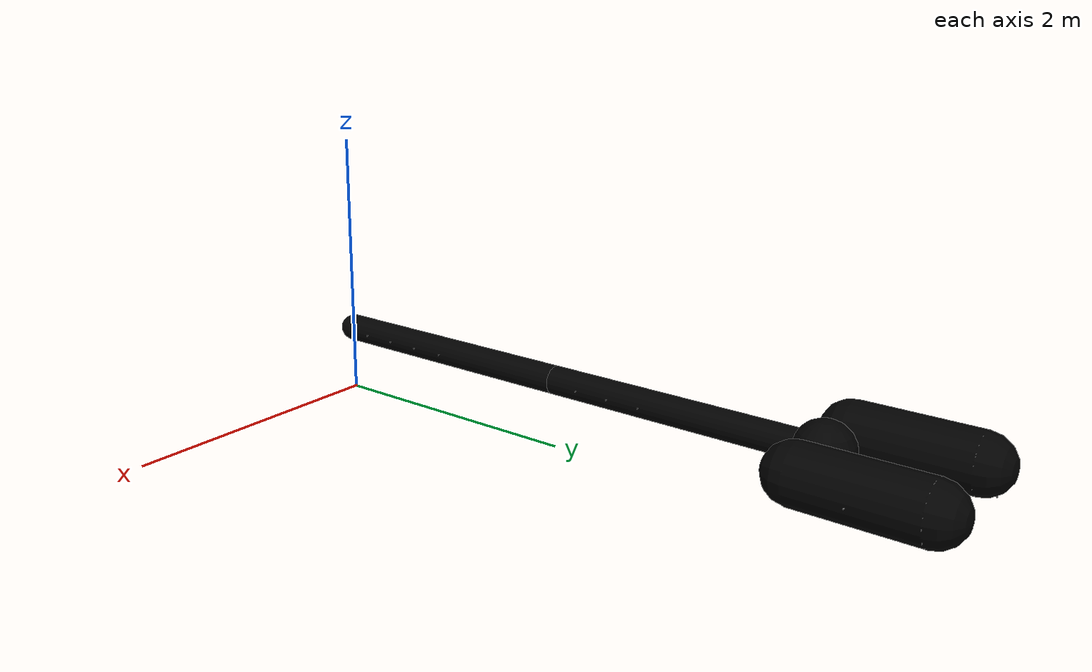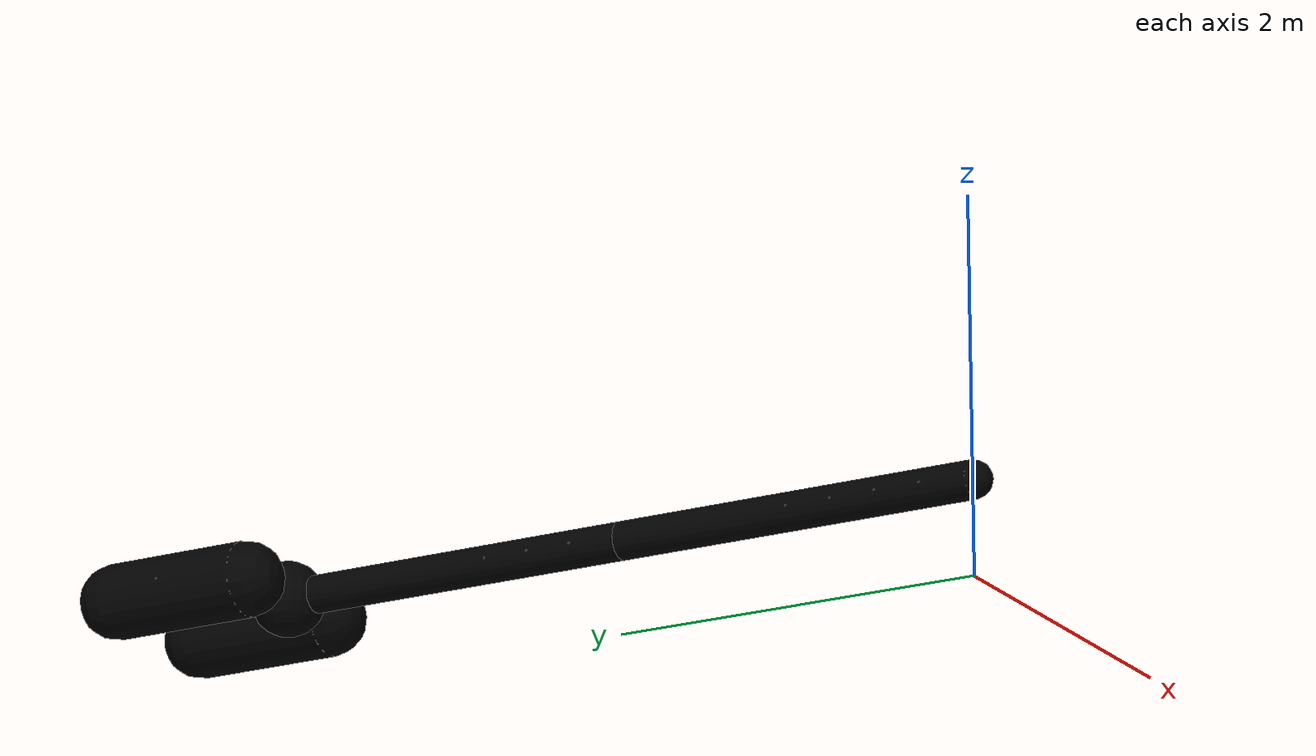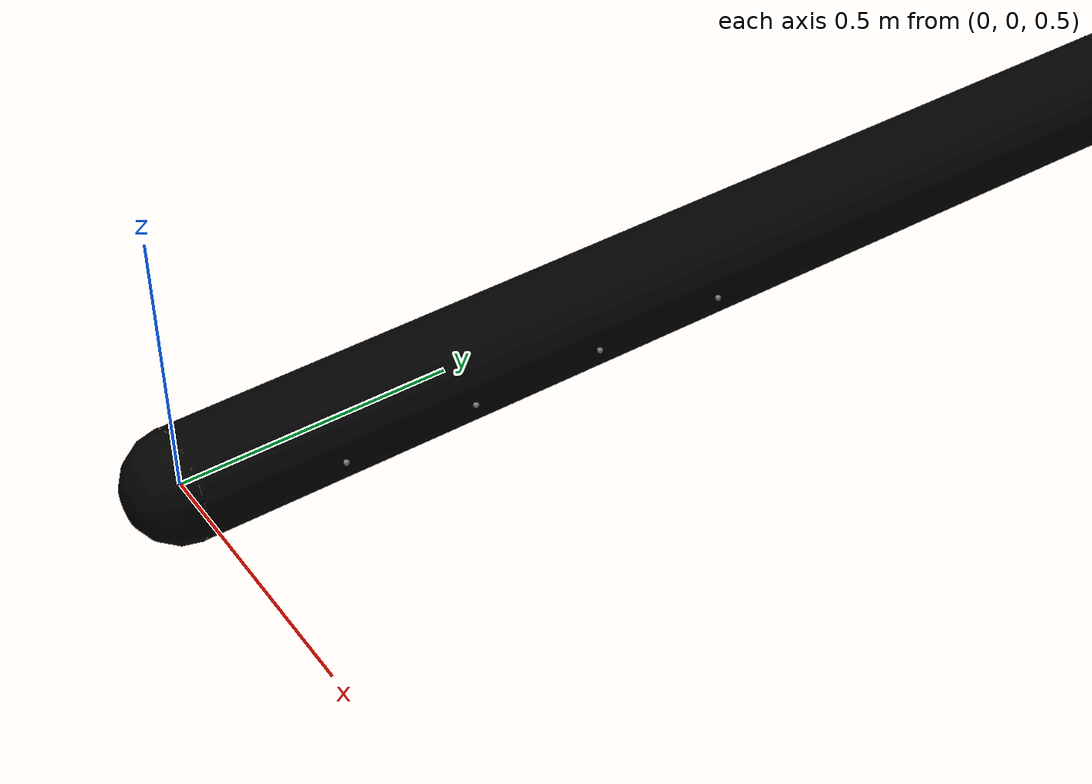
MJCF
<mujoco model="pr2_model">
    <worldbody name="base">
        <body name="pr2" pos="0 0 0.5">
            <body name="link1" pos="0 0 0">
                <joint axis="0 0 1" name="joint1" type="hinge" pos="0 0 0" limited="false"/>
                <geom name="armgeom1" type="capsule" size="0.1" fromto="0 0 0 0 2 0" mass="1" rgba="0 0 0 1" conaffinity="0"/>
                <site name="link1_1" pos="0.105 0.5 0" zaxis="1 0 0" />
                <site name="link1_2" pos="-0.105 0.5 0" zaxis="-1 0 0" />
                <site name="link1_3" pos="0.105 1. 0" zaxis="1 0 0" />
                <site name="link1_4" pos="-0.105 1. 0" zaxis="-1 0 0" />
                <site name="link1_5" pos="-0.105 0.25 0" zaxis="-1 0 0" />
                <site name="link1_6" pos="-0.105 0.75 0" zaxis="-1 0 0" />
                <site name="link1_7" pos="0.105 0.25 0" zaxis="1 0 0" />
                <site name="link1_8" pos="0.105 0.75 0" zaxis="1 0 0" />

                <body name="link2" pos="0 2. 0.">
                    <joint axis="0 0 1" name="joint2" type="hinge" pos="0 0 0" limited="true" range="-3. 3."/>
                    <geom name="armgeom2" type="capsule" size="0.1" fromto="0 0 0 0 2 0"  mass="1" rgba="0 0 0 1" conaffinity="0"/>
                    <site name="link2_1" pos="0.105 0.5 0" zaxis="1 0 0" />
                    <site name="link2_2" pos="-0.105 0.5 0" zaxis="-1 0 0" />
                    <site name="link2_3" pos="0.105 0.25 0" zaxis="1 0 0" />
                    <site name="link2_4" pos="-0.105 0.25 0" zaxis="-1 0 0" />
                    <site name="link2_5" pos="0.105 0.75 0" zaxis="1 0 0" />
                    <site name="link2_6" pos="-0.105 0.75 0" zaxis="-1 0 0" />
                    <body name="ee_base" pos="0 2. 0.">
                        <geom name="ee_geom" type="sphere" size="0.2" mass="0.5" rgba="0 0 0 1" conaffinity="0" pos="0 0 0"/>
                        <body name="ee" pos=" 0 0.51 0">
                        </body>
                        <joint axis="0 0 1" name="wrist" type="hinge" pos="0 0 0" limited="true" range="-3 3"/>
                        <site name="ee_1" pos="0.21 0. 0" zaxis="1 0 0" />
                        <site name="ee_2" pos="-0.21 0. 0" zaxis="-1 0 0" />
                        <site name="ee_3" pos="0 0.205 0" zaxis="0 1 0" />
                        <site name="ee_4" pos="0 0.75 0" zaxis="0 1 0" />
                        <site name="ee_5" pos="0 1. 0" zaxis="0 1 0" />
                        <body name="right_finger" pos="-0.4 0 0" euler="0 0 0">
                            <site name="rf_1" pos="-0.25 0.4 0" zaxis="-1 0 0"/>
                            <site name="rf_2" pos="-0.1 0.2 0" zaxis="-1.5 -1 0"/>
                            <site name="rf_6" pos="-0.15 0.4 0" zaxis="1 0 0"/>
                            <joint name="right_finger_joint" axis="1 0 0" limited="true" range="-0.3 0.1" type="slide" solreflimit="0.02 0.25" solimplimit="0.99 1. 0.0001" pos="0 -0.2 0.3" margin="0.02" />
                            <geom pos="0 0 0" size="0.2" type="capsule" fromto="0 0 0 0 0.8 0" mass="1" friction="1.9 0.95 0.0005" rgba="0 0 0 1" conaffinity="0"/>
                        </body>
                        <body name="left_finger" pos="0.4 0. 0" euler="0 0 0.0">
                            <site name="lf_1" pos="0.25 0.4 0" zaxis="1 0 0"/>
                            <site name="lf_2" pos="0.1 0.2 0" zaxis="1.5 -1 0"/>
                            <site name="lf_6" pos="0.15 0.4 0" zaxis="-1 0 0"/>
                            <joint name="left_finger_joint" axis="-1 0 0" limited="true" range="-0.3 0.1" type="slide" solreflimit="0.02 0.25" solimplimit="0.99 1. 0.0001" pos="0 0.2 0.3" margin="0.02" />
                            <geom pos="0 0 0"  type="capsule" size="0.2" fromto="0 0 0 0 0.8 0" mass="1" friction="1.9 0.95 0.0005" rgba="0 0 0 1" conaffinity="0"/>
                        </body>
                    </body>
                </body>
            </body>
        </body>
    </worldbody>

    <actuator>
        <velocity gear="2" kv="30" joint="joint1" name="joint1" ctrllimited="true" ctrlrange="-25 25" />
        <velocity gear="2" kv="25" joint="joint2" name="joint2" ctrllimited="true" ctrlrange="-25 25" />
        <velocity kv="50" joint="wrist" name="wrist" ctrllimited="true" ctrlrange="-10 10" />
        <motor gear="50" joint="left_finger_joint" name="left_grip" ctrllimited="true" ctrlrange="-50 50" />
        <motor gear="50" joint="right_finger_joint" name="right_grip" ctrllimited="true" ctrlrange="-50 50" />
    </actuator>

</mujoco>
